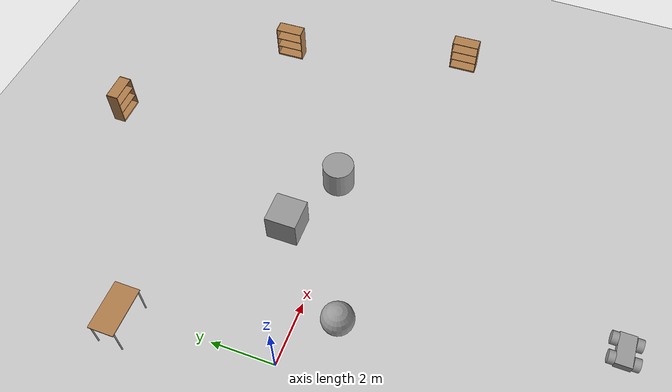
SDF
<sdf version="1.7">
 <world name="default">
  <model name="ground_plane">
   <static>1</static>
   <link name="link">
    <collision name="collision">
     <geometry><plane><normal>0 0 1</normal><size>100 100</size></plane></geometry>
     <surface>
      <contact><collide_bitmask>65535</collide_bitmask></contact>
      <friction><ode><mu>100</mu><mu2>50</mu2></ode></friction>
     </surface>
    </collision>
    <visual name="visual">
     <cast_shadows>0</cast_shadows>
     <geometry><plane><normal>0 0 1</normal><size>100 100</size></plane></geometry>
     <material>
      <script><uri>file://media/materials/scripts/gazebo.material</uri><name>Gazebo/Grey</name></script>
     </material>
    </visual>
   </link>
  </model>
  <model name="bookshelf_clone_0_clone_clone">
   <static>1</static>
   <link name="link">
    <inertial><mass>1</mass></inertial>
    <collision name="back">
     <pose>0 0.005 0.6 0 -0 0</pose>
     <geometry><box><size>0.9 0.01 1.2</size></box></geometry>
    </collision>
    <visual name="visual1">
     <pose>0 0.005 0.6 0 -0 0</pose>
     <geometry><box><size>0.9 0.01 1.2</size></box></geometry>
     <material>
      <script><uri>file://media/materials/scripts/gazebo.material</uri><name>Gazebo/Wood</name></script>
     </material>
    </visual>
    <collision name="left_side">
     <pose>0.45 -0.195 0.6 0 -0 0</pose>
     <geometry><box><size>0.02 0.4 1.2</size></box></geometry>
    </collision>
    <visual name="visual2">
     <pose>0.45 -0.195 0.6 0 -0 0</pose>
     <geometry><box><size>0.02 0.4 1.2</size></box></geometry>
     <material>
      <script><uri>file://media/materials/scripts/gazebo.material</uri><name>Gazebo/Wood</name></script>
     </material>
    </visual>
    <collision name="right_side">
     <pose>-0.45 -0.195 0.6 0 -0 0</pose>
     <geometry><box><size>0.02 0.4 1.2</size></box></geometry>
    </collision>
    <visual name="visual3">
     <pose>-0.45 -0.195 0.6 0 -0 0</pose>
     <geometry><box><size>0.02 0.4 1.2</size></box></geometry>
     <material>
      <script><uri>file://media/materials/scripts/gazebo.material</uri><name>Gazebo/Wood</name></script>
     </material>
    </visual>
    <collision name="bottom">
     <pose>0 -0.195 0.03 0 -0 0</pose>
     <geometry><box><size>0.88 0.4 0.06</size></box></geometry>
    </collision>
    <visual name="visual4">
     <pose>0 -0.195 0.03 0 -0 0</pose>
     <geometry><box><size>0.88 0.4 0.06</size></box></geometry>
     <material>
      <script><uri>file://media/materials/scripts/gazebo.material</uri><name>Gazebo/Wood</name></script>
     </material>
    </visual>
    <collision name="top">
     <pose>0 -0.195 1.19 0 -0 0</pose>
     <geometry><box><size>0.88 0.4 0.02</size></box></geometry>
    </collision>
    <visual name="visual5">
     <pose>0 -0.195 1.19 0 -0 0</pose>
     <geometry><box><size>0.88 0.4 0.02</size></box></geometry>
     <material>
      <script><uri>file://media/materials/scripts/gazebo.material</uri><name>Gazebo/Wood</name></script>
     </material>
    </visual>
    <collision name="low_shelf">
     <pose>0 -0.195 0.43 0 -0 0</pose>
     <geometry><box><size>0.88 0.4 0.02</size></box></geometry>
    </collision>
    <visual name="visual6">
     <pose>0 -0.195 0.43 0 -0 0</pose>
     <geometry><box><size>0.88 0.4 0.02</size></box></geometry>
     <material>
      <script><uri>file://media/materials/scripts/gazebo.material</uri><name>Gazebo/Wood</name></script>
     </material>
    </visual>
    <collision name="high_shelf">
     <pose>0 -0.195 0.8 0 -0 0</pose>
     <geometry><box><size>0.88 0.4 0.02</size></box></geometry>
    </collision>
    <visual name="visual7">
     <pose>0 -0.195 0.8 0 -0 0</pose>
     <geometry><box><size>0.88 0.4 0.02</size></box></geometry>
     <material>
      <script><uri>file://media/materials/scripts/gazebo.material</uri><name>Gazebo/Wood</name></script>
     </material>
    </visual>
   </link>
   <pose>11.5021 4.22521 0 0 0 -1.53774</pose>
  </model>
  <model name="table">
   <static>1</static>
   <link name="link">
    <collision name="surface">
     <pose>0 0 1 0 -0 0</pose>
     <geometry><box><size>1.5 0.8 0.03</size></box></geometry>
     <surface><friction><ode><mu>0.6</mu><mu2>0.6</mu2></ode></friction></surface>
    </collision>
    <visual name="visual1">
     <pose>0 0 1 0 -0 0</pose>
     <geometry><box><size>1.5 0.8 0.03</size></box></geometry>
     <material>
      <script><uri>file://media/materials/scripts/gazebo.material</uri><name>Gazebo/Wood</name></script>
     </material>
    </visual>
    <collision name="front_left_leg">
     <pose>0.68 0.38 0.5 0 -0 0</pose>
     <geometry><cylinder><radius>0.02</radius><length>1</length></cylinder></geometry>
    </collision>
    <visual name="front_left_leg">
     <pose>0.68 0.38 0.5 0 -0 0</pose>
     <geometry><cylinder><radius>0.02</radius><length>1</length></cylinder></geometry>
     <material>
      <script><uri>file://media/materials/scripts/gazebo.material</uri><name>Gazebo/Grey</name></script>
     </material>
    </visual>
    <collision name="front_right_leg">
     <pose>0.68 -0.38 0.5 0 -0 0</pose>
     <geometry><cylinder><radius>0.02</radius><length>1</length></cylinder></geometry>
    </collision>
    <visual name="front_right_leg">
     <pose>0.68 -0.38 0.5 0 -0 0</pose>
     <geometry><cylinder><radius>0.02</radius><length>1</length></cylinder></geometry>
     <material>
      <script><uri>file://media/materials/scripts/gazebo.material</uri><name>Gazebo/Grey</name></script>
     </material>
    </visual>
    <collision name="back_right_leg">
     <pose>-0.68 -0.38 0.5 0 -0 0</pose>
     <geometry><cylinder><radius>0.02</radius><length>1</length></cylinder></geometry>
    </collision>
    <visual name="back_right_leg">
     <pose>-0.68 -0.38 0.5 0 -0 0</pose>
     <geometry><cylinder><radius>0.02</radius><length>1</length></cylinder></geometry>
     <material>
      <script><uri>file://media/materials/scripts/gazebo.material</uri><name>Gazebo/Grey</name></script>
     </material>
    </visual>
    <collision name="back_left_leg">
     <pose>-0.68 0.38 0.5 0 -0 0</pose>
     <geometry><cylinder><radius>0.02</radius><length>1</length></cylinder></geometry>
    </collision>
    <visual name="back_left_leg">
     <pose>-0.68 0.38 0.5 0 -0 0</pose>
     <geometry><cylinder><radius>0.02</radius><length>1</length></cylinder></geometry>
     <material>
      <script><uri>file://media/materials/scripts/gazebo.material</uri><name>Gazebo/Grey</name></script>
     </material>
    </visual>
   </link>
   <pose>-0.3625 4.63347 0 0 -0 0</pose>
  </model>
  <model name="bookshelf_clone_1">
   <static>1</static>
   <link name="link">
    <inertial><mass>1</mass></inertial>
    <collision name="back">
     <pose>0 0.005 0.6 0 -0 0</pose>
     <geometry><box><size>0.9 0.01 1.2</size></box></geometry>
    </collision>
    <visual name="visual1">
     <pose>0 0.005 0.6 0 -0 0</pose>
     <geometry><box><size>0.9 0.01 1.2</size></box></geometry>
     <material>
      <script><uri>file://media/materials/scripts/gazebo.material</uri><name>Gazebo/Wood</name></script>
     </material>
    </visual>
    <collision name="left_side">
     <pose>0.45 -0.195 0.6 0 -0 0</pose>
     <geometry><box><size>0.02 0.4 1.2</size></box></geometry>
    </collision>
    <visual name="visual2">
     <pose>0.45 -0.195 0.6 0 -0 0</pose>
     <geometry><box><size>0.02 0.4 1.2</size></box></geometry>
     <material>
      <script><uri>file://media/materials/scripts/gazebo.material</uri><name>Gazebo/Wood</name></script>
     </material>
    </visual>
    <collision name="right_side">
     <pose>-0.45 -0.195 0.6 0 -0 0</pose>
     <geometry><box><size>0.02 0.4 1.2</size></box></geometry>
    </collision>
    <visual name="visual3">
     <pose>-0.45 -0.195 0.6 0 -0 0</pose>
     <geometry><box><size>0.02 0.4 1.2</size></box></geometry>
     <material>
      <script><uri>file://media/materials/scripts/gazebo.material</uri><name>Gazebo/Wood</name></script>
     </material>
    </visual>
    <collision name="bottom">
     <pose>0 -0.195 0.03 0 -0 0</pose>
     <geometry><box><size>0.88 0.4 0.06</size></box></geometry>
    </collision>
    <visual name="visual4">
     <pose>0 -0.195 0.03 0 -0 0</pose>
     <geometry><box><size>0.88 0.4 0.06</size></box></geometry>
     <material>
      <script><uri>file://media/materials/scripts/gazebo.material</uri><name>Gazebo/Wood</name></script>
     </material>
    </visual>
    <collision name="top">
     <pose>0 -0.195 1.19 0 -0 0</pose>
     <geometry><box><size>0.88 0.4 0.02</size></box></geometry>
    </collision>
    <visual name="visual5">
     <pose>0 -0.195 1.19 0 -0 0</pose>
     <geometry><box><size>0.88 0.4 0.02</size></box></geometry>
     <material>
      <script><uri>file://media/materials/scripts/gazebo.material</uri><name>Gazebo/Wood</name></script>
     </material>
    </visual>
    <collision name="low_shelf">
     <pose>0 -0.195 0.43 0 -0 0</pose>
     <geometry><box><size>0.88 0.4 0.02</size></box></geometry>
    </collision>
    <visual name="visual6">
     <pose>0 -0.195 0.43 0 -0 0</pose>
     <geometry><box><size>0.88 0.4 0.02</size></box></geometry>
     <material>
      <script><uri>file://media/materials/scripts/gazebo.material</uri><name>Gazebo/Wood</name></script>
     </material>
    </visual>
    <collision name="high_shelf">
     <pose>0 -0.195 0.8 0 -0 0</pose>
     <geometry><box><size>0.88 0.4 0.02</size></box></geometry>
    </collision>
    <visual name="visual7">
     <pose>0 -0.195 0.8 0 -0 0</pose>
     <geometry><box><size>0.88 0.4 0.02</size></box></geometry>
     <material>
      <script><uri>file://media/materials/scripts/gazebo.material</uri><name>Gazebo/Wood</name></script>
     </material>
    </visual>
   </link>
   <pose>6.74853 8.75779 0 0 -0 0</pose>
  </model>
  <model name="unit_box">
   <pose>4.26441 1.42489 0.499995 0 1e-05 0</pose>
   <link name="link">
    <inertial>
     <mass>1</mass>
     <inertia>
      <ixx>0.166667</ixx>
      <ixy>0</ixy>
      <ixz>0</ixz>
      <iyy>0.166667</iyy>
      <iyz>0</iyz>
      <izz>0.166667</izz>
     </inertia>
    </inertial>
    <collision name="collision"><geometry><box><size>1 1 1</size></box></geometry></collision>
    <visual name="visual">
     <geometry><box><size>1 1 1</size></box></geometry>
     <material>
      <script><name>Gazebo/Grey</name><uri>file://media/materials/scripts/gazebo.material</uri></script>
     </material>
    </visual>
   </link>
  </model>
  <model name="unit_cylinder">
   <pose>6.39515 0.543725 0.499997 3e-06 3e-06 0</pose>
   <link name="link">
    <inertial>
     <mass>1</mass>
     <inertia><ixx>0.145833</ixx><ixy>0</ixy><ixz>0</ixz><iyy>0.145833</iyy><iyz>0</iyz><izz>0.125</izz></inertia>
    </inertial>
    <collision name="collision">
     <geometry><cylinder><radius>0.5</radius><length>1</length></cylinder></geometry>
    </collision>
    <visual name="visual">
     <geometry><cylinder><radius>0.5</radius><length>1</length></cylinder></geometry>
     <material>
      <script><name>Gazebo/Grey</name><uri>file://media/materials/scripts/gazebo.material</uri></script>
     </material>
    </visual>
   </link>
  </model>
  <model name="bookshelf_clone_0_clone_clone_0">
   <static>1</static>
   <link name="link">
    <inertial><mass>1</mass></inertial>
    <collision name="back">
     <pose>0 0.005 0.6 0 -0 0</pose>
     <geometry><box><size>0.9 0.01 1.2</size></box></geometry>
    </collision>
    <visual name="visual1">
     <pose>0 0.005 0.6 0 -0 0</pose>
     <geometry><box><size>0.9 0.01 1.2</size></box></geometry>
     <material>
      <script><uri>file://media/materials/scripts/gazebo.material</uri><name>Gazebo/Wood</name></script>
     </material>
    </visual>
    <collision name="left_side">
     <pose>0.45 -0.195 0.6 0 -0 0</pose>
     <geometry><box><size>0.02 0.4 1.2</size></box></geometry>
    </collision>
    <visual name="visual2">
     <pose>0.45 -0.195 0.6 0 -0 0</pose>
     <geometry><box><size>0.02 0.4 1.2</size></box></geometry>
     <material>
      <script><uri>file://media/materials/scripts/gazebo.material</uri><name>Gazebo/Wood</name></script>
     </material>
    </visual>
    <collision name="right_side">
     <pose>-0.45 -0.195 0.6 0 -0 0</pose>
     <geometry><box><size>0.02 0.4 1.2</size></box></geometry>
    </collision>
    <visual name="visual3">
     <pose>-0.45 -0.195 0.6 0 -0 0</pose>
     <geometry><box><size>0.02 0.4 1.2</size></box></geometry>
     <material>
      <script><uri>file://media/materials/scripts/gazebo.material</uri><name>Gazebo/Wood</name></script>
     </material>
    </visual>
    <collision name="bottom">
     <pose>0 -0.195 0.03 0 -0 0</pose>
     <geometry><box><size>0.88 0.4 0.06</size></box></geometry>
    </collision>
    <visual name="visual4">
     <pose>0 -0.195 0.03 0 -0 0</pose>
     <geometry><box><size>0.88 0.4 0.06</size></box></geometry>
     <material>
      <script><uri>file://media/materials/scripts/gazebo.material</uri><name>Gazebo/Wood</name></script>
     </material>
    </visual>
    <collision name="top">
     <pose>0 -0.195 1.19 0 -0 0</pose>
     <geometry><box><size>0.88 0.4 0.02</size></box></geometry>
    </collision>
    <visual name="visual5">
     <pose>0 -0.195 1.19 0 -0 0</pose>
     <geometry><box><size>0.88 0.4 0.02</size></box></geometry>
     <material>
      <script><uri>file://media/materials/scripts/gazebo.material</uri><name>Gazebo/Wood</name></script>
     </material>
    </visual>
    <collision name="low_shelf">
     <pose>0 -0.195 0.43 0 -0 0</pose>
     <geometry><box><size>0.88 0.4 0.02</size></box></geometry>
    </collision>
    <visual name="visual6">
     <pose>0 -0.195 0.43 0 -0 0</pose>
     <geometry><box><size>0.88 0.4 0.02</size></box></geometry>
     <material>
      <script><uri>file://media/materials/scripts/gazebo.material</uri><name>Gazebo/Wood</name></script>
     </material>
    </visual>
    <collision name="high_shelf">
     <pose>0 -0.195 0.8 0 -0 0</pose>
     <geometry><box><size>0.88 0.4 0.02</size></box></geometry>
    </collision>
    <visual name="visual7">
     <pose>0 -0.195 0.8 0 -0 0</pose>
     <geometry><box><size>0.88 0.4 0.02</size></box></geometry>
     <material>
      <script><uri>file://media/materials/scripts/gazebo.material</uri><name>Gazebo/Wood</name></script>
     </material>
    </visual>
   </link>
   <pose>13.0181 -1.85413 0 0 0 -1.53774</pose>
  </model>
  <model name="AGV_0">
   <link name="link_0">
    <inertial>
     <mass>0.165304</mass>
     <inertia>
      <ixx>0.00689409</ixx>
      <ixy>0</ixy>
      <ixz>0</ixz>
      <iyy>0.0137549</iyy>
      <iyz>0</iyz>
      <izz>0.018778</izz>
     </inertia>
    </inertial>
    <pose>0 0 -0.008 0 -0 0</pose>
    <visual name="visual">
     <geometry><box><size>1 0.5 0.24</size></box></geometry>
     <material>
      <lighting>1</lighting>
      <script><uri>file://media/materials/scripts/gazebo.material</uri><name>Gazebo/Grey</name></script>
      <shader type="pixel"><normal_map>__default__</normal_map></shader>
      <ambient>0.3 0.3 0.3 1</ambient>
      <diffuse>0.7 0.7 0.7 1</diffuse>
      <specular>0.01 0.01 0.01 1</specular>
      <emissive>0 0 0 1</emissive>
     </material>
    </visual>
    <collision name="collision">
     <geometry><box><size>1 0.5 0.24</size></box></geometry>
     <surface>
      <friction>
       <ode><mu>1</mu><mu2>1</mu2><fdir1>0 0 0</fdir1><slip1>0</slip1><slip2>0</slip2></ode>
       <torsional>
        <coefficient>1</coefficient>
        <patch_radius>0</patch_radius>
        <surface_radius>0</surface_radius>
        <use_patch_radius>1</use_patch_radius>
        <ode><slip>0</slip></ode>
       </torsional>
      </friction>
      <bounce><restitution_coefficient>0</restitution_coefficient><threshold>1e+06</threshold></bounce>
      <contact>
       <collide_without_contact>0</collide_without_contact>
       <collide_without_contact_bitmask>1</collide_without_contact_bitmask>
       <collide_bitmask>1</collide_bitmask>
       <ode>
        <soft_cfm>0</soft_cfm>
        <soft_erp>0.2</soft_erp>
        <kp>1e+13</kp>
        <kd>1</kd>
        <max_vel>0.01</max_vel>
        <min_depth>0</min_depth>
       </ode>
       <bullet>
        <split_impulse>1</split_impulse>
        <split_impulse_penetration_threshold>-0.01</split_impulse_penetration_threshold>
        <soft_cfm>0</soft_cfm>
        <soft_erp>0.2</soft_erp>
        <kp>1e+13</kp>
        <kd>1</kd>
       </bullet>
      </contact>
     </surface>
    </collision>
   </link>
   <link name="link_1_clone_0">
    <inertial>
     <mass>1</mass>
     <inertia><ixx>0.145833</ixx><ixy>0</ixy><ixz>0</ixz><iyy>0.145833</iyy><iyz>0</iyz><izz>0.125</izz></inertia>
    </inertial>
    <pose>0.3 0.350019 0.002 1.5707 -0 0</pose>
    <visual name="visual">
     <geometry><cylinder><radius>0.2</radius><length>0.2</length></cylinder></geometry>
     <material>
      <lighting>1</lighting>
      <script><uri>file://media/materials/scripts/gazebo.material</uri><name>Gazebo/Grey</name></script>
      <shader type="pixel"><normal_map>__default__</normal_map></shader>
      <ambient>0.3 0.3 0.3 1</ambient>
      <diffuse>0.7 0.7 0.7 1</diffuse>
      <specular>0.01 0.01 0.01 1</specular>
      <emissive>0 0 0 1</emissive>
     </material>
    </visual>
    <collision name="collision">
     <geometry><cylinder><radius>0.2</radius><length>0.2</length></cylinder></geometry>
     <surface>
      <friction>
       <ode><mu>1</mu><mu2>1</mu2><fdir1>0 0 0</fdir1><slip1>0</slip1><slip2>0</slip2></ode>
       <torsional>
        <coefficient>1</coefficient>
        <patch_radius>0</patch_radius>
        <surface_radius>0</surface_radius>
        <use_patch_radius>1</use_patch_radius>
        <ode><slip>0</slip></ode>
       </torsional>
      </friction>
      <bounce><restitution_coefficient>0</restitution_coefficient><threshold>1e+06</threshold></bounce>
      <contact>
       <collide_without_contact>0</collide_without_contact>
       <collide_without_contact_bitmask>1</collide_without_contact_bitmask>
       <collide_bitmask>1</collide_bitmask>
       <ode>
        <soft_cfm>0</soft_cfm>
        <soft_erp>0.2</soft_erp>
        <kp>1e+13</kp>
        <kd>1</kd>
        <max_vel>0.01</max_vel>
        <min_depth>0</min_depth>
       </ode>
       <bullet>
        <split_impulse>1</split_impulse>
        <split_impulse_penetration_threshold>-0.01</split_impulse_penetration_threshold>
        <soft_cfm>0</soft_cfm>
        <soft_erp>0.2</soft_erp>
        <kp>1e+13</kp>
        <kd>1</kd>
       </bullet>
      </contact>
     </surface>
    </collision>
   </link>
   <link name="link_1_clone_0_clone">
    <inertial>
     <mass>1</mass>
     <inertia><ixx>0.145833</ixx><ixy>0</ixy><ixz>0</ixz><iyy>0.145833</iyy><iyz>0</iyz><izz>0.125</izz></inertia>
    </inertial>
    <pose>-0.3 -0.350019 0.002 1.5707 -0 0</pose>
    <visual name="visual">
     <geometry><cylinder><radius>0.2</radius><length>0.2</length></cylinder></geometry>
     <material>
      <lighting>1</lighting>
      <script><uri>file://media/materials/scripts/gazebo.material</uri><name>Gazebo/Grey</name></script>
      <shader type="pixel"><normal_map>__default__</normal_map></shader>
      <ambient>0.3 0.3 0.3 1</ambient>
      <diffuse>0.7 0.7 0.7 1</diffuse>
      <specular>0.01 0.01 0.01 1</specular>
      <emissive>0 0 0 1</emissive>
     </material>
    </visual>
    <collision name="collision">
     <geometry><cylinder><radius>0.2</radius><length>0.2</length></cylinder></geometry>
     <surface>
      <friction>
       <ode><mu>1</mu><mu2>1</mu2><fdir1>0 0 0</fdir1><slip1>0</slip1><slip2>0</slip2></ode>
       <torsional>
        <coefficient>1</coefficient>
        <patch_radius>0</patch_radius>
        <surface_radius>0</surface_radius>
        <use_patch_radius>1</use_patch_radius>
        <ode><slip>0</slip></ode>
       </torsional>
      </friction>
      <bounce><restitution_coefficient>0</restitution_coefficient><threshold>1e+06</threshold></bounce>
      <contact>
       <collide_without_contact>0</collide_without_contact>
       <collide_without_contact_bitmask>1</collide_without_contact_bitmask>
       <collide_bitmask>1</collide_bitmask>
       <ode>
        <soft_cfm>0</soft_cfm>
        <soft_erp>0.2</soft_erp>
        <kp>1e+13</kp>
        <kd>1</kd>
        <max_vel>0.01</max_vel>
        <min_depth>0</min_depth>
       </ode>
       <bullet>
        <split_impulse>1</split_impulse>
        <split_impulse_penetration_threshold>-0.01</split_impulse_penetration_threshold>
        <soft_cfm>0</soft_cfm>
        <soft_erp>0.2</soft_erp>
        <kp>1e+13</kp>
        <kd>1</kd>
       </bullet>
      </contact>
     </surface>
    </collision>
   </link>
   <link name="link_1_clone_0_clone_0">
    <inertial>
     <mass>1</mass>
     <inertia><ixx>0.145833</ixx><ixy>0</ixy><ixz>0</ixz><iyy>0.145833</iyy><iyz>0</iyz><izz>0.125</izz></inertia>
    </inertial>
    <pose>0.3 -0.350019 0.002 1.5707 -0 0</pose>
    <visual name="visual">
     <geometry><cylinder><radius>0.2</radius><length>0.2</length></cylinder></geometry>
     <material>
      <lighting>1</lighting>
      <script><uri>file://media/materials/scripts/gazebo.material</uri><name>Gazebo/Grey</name></script>
      <shader type="pixel"><normal_map>__default__</normal_map></shader>
      <ambient>0.3 0.3 0.3 1</ambient>
      <diffuse>0.7 0.7 0.7 1</diffuse>
      <specular>0.01 0.01 0.01 1</specular>
      <emissive>0 0 0 1</emissive>
     </material>
    </visual>
    <collision name="collision">
     <geometry><cylinder><radius>0.2</radius><length>0.2</length></cylinder></geometry>
     <surface>
      <friction>
       <ode><mu>1</mu><mu2>1</mu2><fdir1>0 0 0</fdir1><slip1>0</slip1><slip2>0</slip2></ode>
       <torsional>
        <coefficient>1</coefficient>
        <patch_radius>0</patch_radius>
        <surface_radius>0</surface_radius>
        <use_patch_radius>1</use_patch_radius>
        <ode><slip>0</slip></ode>
       </torsional>
      </friction>
      <bounce><restitution_coefficient>0</restitution_coefficient><threshold>1e+06</threshold></bounce>
      <contact>
       <collide_without_contact>0</collide_without_contact>
       <collide_without_contact_bitmask>1</collide_without_contact_bitmask>
       <collide_bitmask>1</collide_bitmask>
       <ode>
        <soft_cfm>0</soft_cfm>
        <soft_erp>0.2</soft_erp>
        <kp>1e+13</kp>
        <kd>1</kd>
        <max_vel>0.01</max_vel>
        <min_depth>0</min_depth>
       </ode>
       <bullet>
        <split_impulse>1</split_impulse>
        <split_impulse_penetration_threshold>-0.01</split_impulse_penetration_threshold>
        <soft_cfm>0</soft_cfm>
        <soft_erp>0.2</soft_erp>
        <kp>1e+13</kp>
        <kd>1</kd>
       </bullet>
      </contact>
     </surface>
    </collision>
   </link>
   <link name="link_1_clone_1">
    <inertial>
     <mass>1</mass>
     <inertia><ixx>0.145833</ixx><ixy>0</ixy><ixz>0</ixz><iyy>0.145833</iyy><iyz>0</iyz><izz>0.125</izz></inertia>
    </inertial>
    <pose>-0.3 0.350019 0.002 1.5707 -0 0</pose>
    <visual name="visual">
     <geometry><cylinder><radius>0.2</radius><length>0.2</length></cylinder></geometry>
     <material>
      <lighting>1</lighting>
      <script><uri>file://media/materials/scripts/gazebo.material</uri><name>Gazebo/Grey</name></script>
      <shader type="pixel"><normal_map>__default__</normal_map></shader>
      <ambient>0.3 0.3 0.3 1</ambient>
      <diffuse>0.7 0.7 0.7 1</diffuse>
      <specular>0.01 0.01 0.01 1</specular>
      <emissive>0 0 0 1</emissive>
     </material>
    </visual>
    <collision name="collision">
     <geometry><cylinder><radius>0.2</radius><length>0.2</length></cylinder></geometry>
     <surface>
      <friction>
       <ode><mu>1</mu><mu2>1</mu2><fdir1>0 0 0</fdir1><slip1>0</slip1><slip2>0</slip2></ode>
       <torsional>
        <coefficient>1</coefficient>
        <patch_radius>0</patch_radius>
        <surface_radius>0</surface_radius>
        <use_patch_radius>1</use_patch_radius>
        <ode><slip>0</slip></ode>
       </torsional>
      </friction>
      <bounce><restitution_coefficient>0</restitution_coefficient><threshold>1e+06</threshold></bounce>
      <contact>
       <collide_without_contact>0</collide_without_contact>
       <collide_without_contact_bitmask>1</collide_without_contact_bitmask>
       <collide_bitmask>1</collide_bitmask>
       <ode>
        <soft_cfm>0</soft_cfm>
        <soft_erp>0.2</soft_erp>
        <kp>1e+13</kp>
        <kd>1</kd>
        <max_vel>0.01</max_vel>
        <min_depth>0</min_depth>
       </ode>
       <bullet>
        <split_impulse>1</split_impulse>
        <split_impulse_penetration_threshold>-0.01</split_impulse_penetration_threshold>
        <soft_cfm>0</soft_cfm>
        <soft_erp>0.2</soft_erp>
        <kp>1e+13</kp>
        <kd>1</kd>
       </bullet>
      </contact>
     </surface>
    </collision>
   </link>
   <joint name="link_0_JOINT_2" type="revolute">
    <parent>link_0</parent>
    <child>link_1_clone_0_clone_0</child>
    <axis>
     <xyz>0 0 1</xyz>
     <limit>
      <lower>-1.79769e+308</lower>
      <upper>1.79769e+308</upper>
      <effort>-1</effort>
      <velocity>-1</velocity>
     </limit>
     <dynamics>
      <spring_reference>0</spring_reference>
      <spring_stiffness>0</spring_stiffness>
      <damping>0</damping>
     </dynamics>
    </axis>
    <physics>
     <ode><limit><cfm>0</cfm><erp>0.2</erp></limit><suspension><cfm>0</cfm><erp>0.2</erp></suspension></ode>
    </physics>
   </joint>
   <joint name="link_0_JOINT_3" type="revolute">
    <parent>link_0</parent>
    <child>link_1_clone_0_clone</child>
    <axis>
     <xyz>0 0 1</xyz>
     <limit>
      <lower>-1.79769e+308</lower>
      <upper>1.79769e+308</upper>
      <effort>-1</effort>
      <velocity>-1</velocity>
     </limit>
     <dynamics>
      <spring_reference>0</spring_reference>
      <spring_stiffness>0</spring_stiffness>
      <damping>0</damping>
     </dynamics>
    </axis>
    <physics>
     <ode><limit><cfm>0</cfm><erp>0.2</erp></limit><suspension><cfm>0</cfm><erp>0.2</erp></suspension></ode>
    </physics>
   </joint>
   <joint name="link_0_JOINT_4" type="revolute">
    <parent>link_0</parent>
    <child>link_1_clone_0</child>
    <axis>
     <xyz>0 0 1</xyz>
     <limit>
      <lower>-1.79769e+308</lower>
      <upper>1.79769e+308</upper>
      <effort>-1</effort>
      <velocity>-1</velocity>
     </limit>
     <dynamics>
      <spring_reference>0</spring_reference>
      <spring_stiffness>0</spring_stiffness>
      <damping>0</damping>
     </dynamics>
    </axis>
    <physics>
     <ode><limit><cfm>0</cfm><erp>0.2</erp></limit><suspension><cfm>0</cfm><erp>0.2</erp></suspension></ode>
    </physics>
   </joint>
   <joint name="link_0_JOINT_5" type="revolute">
    <parent>link_0</parent>
    <child>link_1_clone_1</child>
    <axis>
     <xyz>0 0 1</xyz>
     <limit>
      <lower>-1.79769e+308</lower>
      <upper>1.79769e+308</upper>
      <effort>-1</effort>
      <velocity>-1</velocity>
     </limit>
     <dynamics>
      <spring_reference>0</spring_reference>
      <spring_stiffness>0</spring_stiffness>
      <damping>0</damping>
     </dynamics>
    </axis>
    <physics>
     <ode><limit><cfm>0</cfm><erp>0.2</erp></limit><suspension><cfm>0</cfm><erp>0.2</erp></suspension></ode>
    </physics>
   </joint>
   <static>0</static>
   <pose>3.67078 -9.03873 0.198006 3.9e-05 -3e-06 9.6e-05</pose>
  </model>
  <model name="big_ball">
   <link name="link_0">
    <inertial>
     <mass>1</mass>
     <inertia><ixx>0.1</ixx><ixy>0</ixy><ixz>0</ixz><iyy>0.1</iyy><iyz>0</iyz><izz>0.1</izz></inertia>
    </inertial>
    <visual name="visual">
     <geometry><sphere><radius>0.5</radius></sphere></geometry>
     <material>
      <lighting>1</lighting>
      <script><uri>file://media/materials/scripts/gazebo.material</uri><name>Gazebo/Grey</name></script>
      <shader type="pixel"><normal_map>__default__</normal_map></shader>
      <ambient>1 1 1 1</ambient>
      <diffuse>1 1 1 1</diffuse>
      <specular>1 1 1 1</specular>
      <emissive>1 1 1 0.6</emissive>
     </material>
    </visual>
    <collision name="collision">
     <geometry><sphere><radius>0.5</radius></sphere></geometry>
     <surface>
      <friction>
       <ode><mu>1</mu><mu2>1</mu2><fdir1>0 0 0</fdir1><slip1>0</slip1><slip2>0</slip2></ode>
       <torsional>
        <coefficient>1</coefficient>
        <patch_radius>0</patch_radius>
        <surface_radius>0</surface_radius>
        <use_patch_radius>1</use_patch_radius>
        <ode><slip>0</slip></ode>
       </torsional>
      </friction>
      <bounce><restitution_coefficient>0</restitution_coefficient><threshold>1e+06</threshold></bounce>
      <contact>
       <collide_without_contact>0</collide_without_contact>
       <collide_without_contact_bitmask>1</collide_without_contact_bitmask>
       <collide_bitmask>1</collide_bitmask>
       <ode>
        <soft_cfm>0</soft_cfm>
        <soft_erp>0.2</soft_erp>
        <kp>1e+13</kp>
        <kd>1</kd>
        <max_vel>0.01</max_vel>
        <min_depth>0</min_depth>
       </ode>
       <bullet>
        <split_impulse>1</split_impulse>
        <split_impulse_penetration_threshold>-0.01</split_impulse_penetration_threshold>
        <soft_cfm>0</soft_cfm>
        <soft_erp>0.2</soft_erp>
        <kp>1e+13</kp>
        <kd>1</kd>
       </bullet>
      </contact>
     </surface>
    </collision>
   </link>
   <static>0</static>
   <pose>1.70957 -1.20816 0.5 0 -0 0</pose>
  </model>
 </world>
</sdf>
